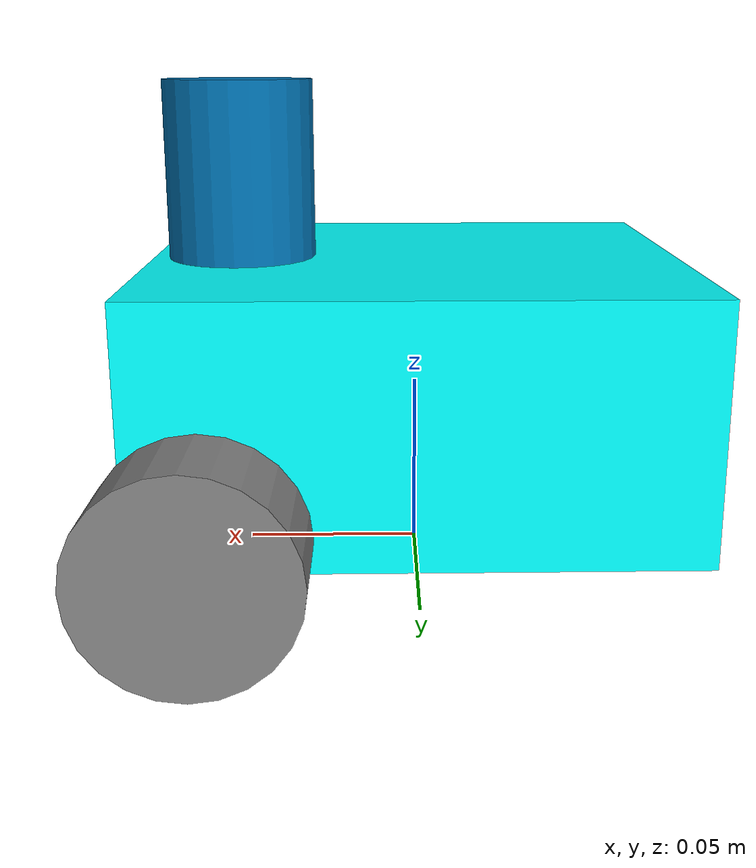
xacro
<?xml version="1.0"?>
<robot name="sam_bot" xmlns:xacro="http://ros.org/wiki/xacro">

  <!-- Define robot constants -->
  <xacro:property name="base_width" value="0.13"/>
  <xacro:property name="base_length" value="0.15"/>
  <xacro:property name="base_height" value="0.07"/>

  <xacro:property name="wheel_radius" value="0.028"/>
  <xacro:property name="wheel_width" value="0.0275"/>
  <xacro:property name="wheel_ygap" value="0.002"/>
  <xacro:property name="wheel_zoff" value="-0.01"/>
  <xacro:property name="wheel_xoff" value="0.02"/>

  <xacro:property name="laser_height" value="0.05"/>
  <xacro:property name="laser_radius" value="0.021"/>

  <xacro:property name="caster_xoff" value="0.07"/>

  <link name="base_footprint"/>

  <joint name="base_joint" type="fixed">
    <parent link="base_footprint"/>
    <child link="base_link"/>
    <origin xyz="0.0 0.0 ${wheel_radius+wheel_zoff+base_height/2}" rpy="0 0 0"/>
  </joint>

  <link name="base_link">
    <visual>
      <geometry>
        <box size="${base_length} ${base_width} ${base_height}"/>
      </geometry>
      <material name="Cyan">
        <color rgba="0 1.0 1.0 1.0"/>
      </material>
      <origin xyz="0 0 0" rpy="0 0 0"/>
    </visual>
  </link>

  <xacro:macro name="wheel" params="prefix x_reflect y_reflect">
    <link name="${prefix}_link">
      <visual>
        <origin xyz="0 0 0" rpy="${pi/2} 0 0"/>
        <geometry>
            <cylinder radius="${wheel_radius}" length="${wheel_width}"/>
        </geometry>
        <material name="Gray">
          <color rgba="0.5 0.5 0.5 1.0"/>
        </material>
      </visual>
    </link>

    <joint name="${prefix}_joint" type="continuous">
      <parent link="base_link"/>
      <child link="${prefix}_link"/>
      <origin xyz="${x_reflect*wheel_xoff+base_length/2} ${y_reflect*((base_width+wheel_width)/2+wheel_ygap)} ${-wheel_zoff-base_height/2}" rpy="0 0 0"/>
      <axis xyz="0 1 0"/>
    </joint>
  </xacro:macro>

  <xacro:wheel prefix="left_wheel" x_reflect="-1" y_reflect="1" />
  <xacro:wheel prefix="right_wheel" x_reflect="-1" y_reflect="-1" />

  <link name="laser">
    <visual>
      <origin xyz="0 0 0" rpy="0 0 0"/>
      <geometry>
        <cylinder radius="${laser_radius}" length="${laser_height}"/>
      </geometry>
    </visual>
  </link>

  <joint name="laser_joint" type="fixed">
    <parent link="base_link"/>
    <child link="laser"/>
    <origin xyz="${base_length/3} 0 ${base_height/2 + laser_height/2}" rpy="0 0 0"/>
  </joint>

</robot>
